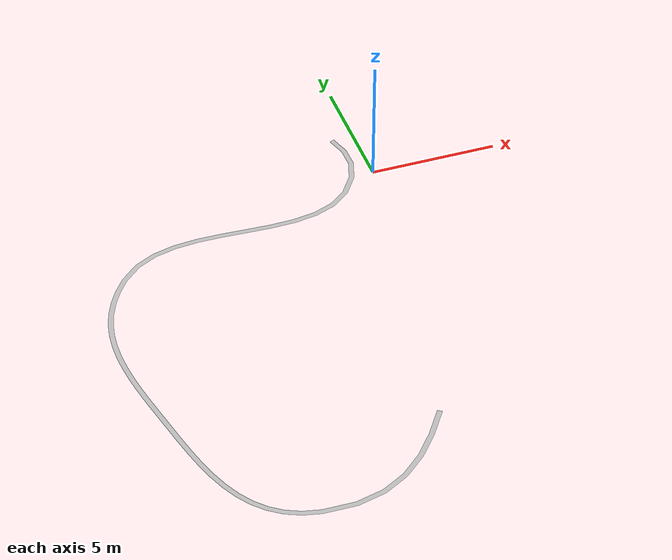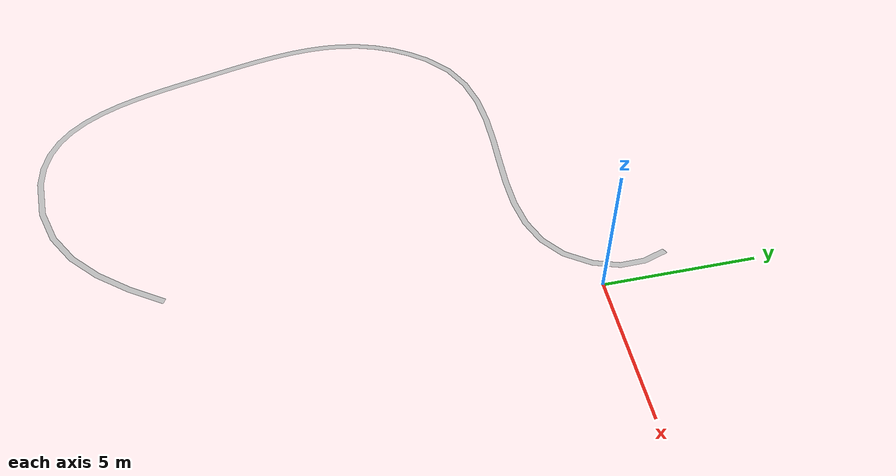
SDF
<?xml version="1.0"?>
<sdf version="1.5">
    <model name="road3_2">
        <static>true</static>
        <link name="link">
            <collision name="collision">
                <pose>0 0 0 0 0 0</pose>
                <geometry>
                    <mesh>
                        <uri>model://road3_2/meshes/road3_2.dae</uri>
                    </mesh>
                </geometry>
            </collision>
            <visual name="visual">
              <pose>0 0 0 0 0 0</pose>
              <geometry>
              <mesh>
                 <uri>model://road3_2/meshes/road3_2.dae</uri>
              </mesh>
              </geometry>
             </visual>
        </link>
    </model>
</sdf>
